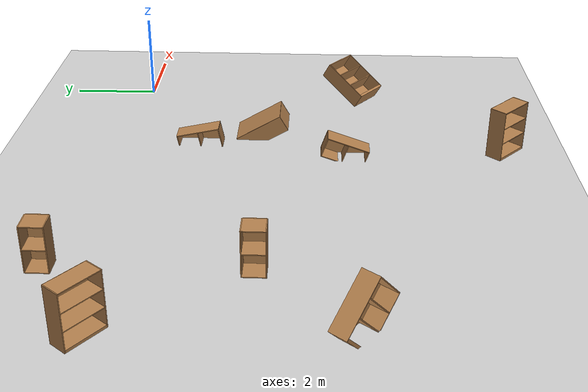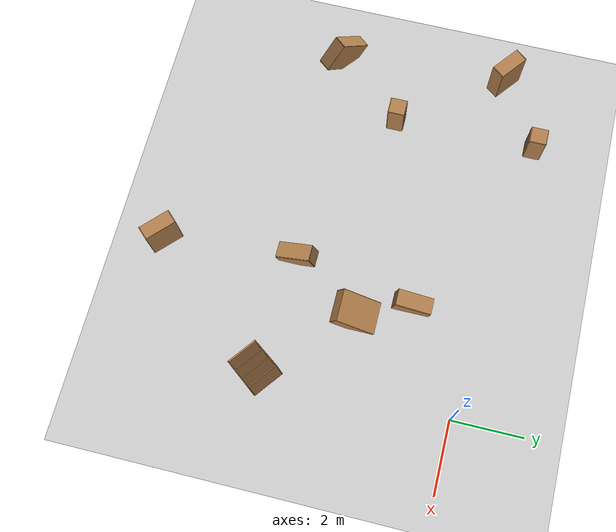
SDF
<sdf version="1.7">
 <world name="default">
  <model name="ground_plane">
   <static>1</static>
   <link name="link">
    <collision name="collision">
     <geometry><plane><normal>0 0 1</normal><size>100 100</size></plane></geometry>
     <surface><friction><ode><mu>100</mu><mu2>50</mu2></ode></friction></surface>
    </collision>
    <visual name="visual">
     <cast_shadows>0</cast_shadows>
     <geometry><plane><normal>0 0 1</normal><size>100 100</size></plane></geometry>
     <material>
      <script><uri>file://media/materials/scripts/gazebo.material</uri><name>Gazebo/Grey</name></script>
     </material>
    </visual>
   </link>
  </model>
  <model name="cabinet">
   <static>1</static>
   <link name="cabinet_bottom_plate">
    <inertial>
     <pose>0 0 -1 0 -0 0</pose>
     <inertia><ixx>2.05</ixx><ixy>0</ixy><ixz>0</ixz><iyy>2.05</iyy><iyz>0</iyz><izz>2.05</izz></inertia>
     <mass>25</mass>
    </inertial>
    <collision name="cabinet_bottom_plate_geom">
     <pose>0 0 0.01 0 -0 0</pose>
     <geometry><box><size>0.45 0.45 0.02</size></box></geometry>
    </collision>
    <visual name="cabinet_bottom_plate_geom_visual">
     <pose>0 0 0.01 0 -0 0</pose>
     <geometry><box><size>0.45 0.45 0.02</size></box></geometry>
     <material>
      <script><uri>file://media/materials/scripts/gazebo.material</uri><name>Gazebo/Wood</name></script>
     </material>
    </visual>
    <collision name="cabinet_bottom_plate_geom_cabinet_back_plate">
     <pose>0.235 0 0.51 0 -0 0</pose>
     <geometry><box><size>0.02 0.45 1.02</size></box></geometry>
    </collision>
    <visual name="cabinet_bottom_plate_geom_cabinet_back_plate_visual">
     <pose>0.235 0 0.51 0 -0 0</pose>
     <geometry><box><size>0.02 0.45 1.02</size></box></geometry>
     <material>
      <script><uri>file://media/materials/scripts/gazebo.material</uri><name>Gazebo/Wood</name></script>
     </material>
    </visual>
    <collision name="cabinet_bottom_plate_geom_cabinet_left_plate">
     <pose>0 0.235 0.51 0 -0 0</pose>
     <geometry><box><size>0.45 0.02 1.02</size></box></geometry>
    </collision>
    <visual name="cabinet_bottom_plate_geom_cabinet_left_plate_visual">
     <pose>0 0.235 0.51 0 -0 0</pose>
     <geometry><box><size>0.45 0.02 1.02</size></box></geometry>
     <material>
      <script><uri>file://media/materials/scripts/gazebo.material</uri><name>Gazebo/Wood</name></script>
     </material>
    </visual>
    <collision name="cabinet_bottom_plate_geom_cabinet_middle_plate">
     <pose>0 0 0.51 0 -0 0</pose>
     <geometry><box><size>0.45 0.45 0.02</size></box></geometry>
    </collision>
    <visual name="cabinet_bottom_plate_geom_cabinet_middle_plate_visual">
     <pose>0 0 0.51 0 -0 0</pose>
     <geometry><box><size>0.45 0.45 0.02</size></box></geometry>
     <material>
      <script><uri>file://media/materials/scripts/gazebo.material</uri><name>Gazebo/Wood</name></script>
     </material>
    </visual>
    <collision name="cabinet_bottom_plate_geom_cabinet_right_plate">
     <pose>0 -0.235 0.51 0 -0 0</pose>
     <geometry><box><size>0.45 0.02 1.02</size></box></geometry>
    </collision>
    <visual name="cabinet_bottom_plate_geom_cabinet_right_plate_visual">
     <pose>0 -0.235 0.51 0 -0 0</pose>
     <geometry><box><size>0.45 0.02 1.02</size></box></geometry>
     <material>
      <script><uri>file://media/materials/scripts/gazebo.material</uri><name>Gazebo/Wood</name></script>
     </material>
    </visual>
    <collision name="cabinet_bottom_plate_geom_cabinet_top_plate">
     <pose>0 0 1.01 0 -0 0</pose>
     <geometry><box><size>0.45 0.45 0.02</size></box></geometry>
    </collision>
    <visual name="cabinet_bottom_plate_geom_cabinet_top_plate_visual">
     <pose>0 0 1.01 0 -0 0</pose>
     <geometry><box><size>0.45 0.45 0.02</size></box></geometry>
     <material>
      <script><uri>file://media/materials/scripts/gazebo.material</uri><name>Gazebo/Wood</name></script>
     </material>
    </visual>
   </link>
   <pose>-3.45883 -5.52714 0 -1.23583 0 0</pose>
  </model>
  <model name="cabinet_0">
   <static>1</static>
   <link name="cabinet_bottom_plate">
    <inertial>
     <pose>0 0 -1 0 -0 0</pose>
     <inertia><ixx>2.05</ixx><ixy>0</ixy><ixz>0</ixz><iyy>2.05</iyy><iyz>0</iyz><izz>2.05</izz></inertia>
     <mass>25</mass>
    </inertial>
    <collision name="cabinet_bottom_plate_geom">
     <pose>0 0 0.01 0 -0 0</pose>
     <geometry><box><size>0.45 0.45 0.02</size></box></geometry>
    </collision>
    <visual name="cabinet_bottom_plate_geom_visual">
     <pose>0 0 0.01 0 -0 0</pose>
     <geometry><box><size>0.45 0.45 0.02</size></box></geometry>
     <material>
      <script><uri>file://media/materials/scripts/gazebo.material</uri><name>Gazebo/Wood</name></script>
     </material>
    </visual>
    <collision name="cabinet_bottom_plate_geom_cabinet_back_plate">
     <pose>0.235 0 0.51 0 -0 0</pose>
     <geometry><box><size>0.02 0.45 1.02</size></box></geometry>
    </collision>
    <visual name="cabinet_bottom_plate_geom_cabinet_back_plate_visual">
     <pose>0.235 0 0.51 0 -0 0</pose>
     <geometry><box><size>0.02 0.45 1.02</size></box></geometry>
     <material>
      <script><uri>file://media/materials/scripts/gazebo.material</uri><name>Gazebo/Wood</name></script>
     </material>
    </visual>
    <collision name="cabinet_bottom_plate_geom_cabinet_left_plate">
     <pose>0 0.235 0.51 0 -0 0</pose>
     <geometry><box><size>0.45 0.02 1.02</size></box></geometry>
    </collision>
    <visual name="cabinet_bottom_plate_geom_cabinet_left_plate_visual">
     <pose>0 0.235 0.51 0 -0 0</pose>
     <geometry><box><size>0.45 0.02 1.02</size></box></geometry>
     <material>
      <script><uri>file://media/materials/scripts/gazebo.material</uri><name>Gazebo/Wood</name></script>
     </material>
    </visual>
    <collision name="cabinet_bottom_plate_geom_cabinet_middle_plate">
     <pose>0 0 0.51 0 -0 0</pose>
     <geometry><box><size>0.45 0.45 0.02</size></box></geometry>
    </collision>
    <visual name="cabinet_bottom_plate_geom_cabinet_middle_plate_visual">
     <pose>0 0 0.51 0 -0 0</pose>
     <geometry><box><size>0.45 0.45 0.02</size></box></geometry>
     <material>
      <script><uri>file://media/materials/scripts/gazebo.material</uri><name>Gazebo/Wood</name></script>
     </material>
    </visual>
    <collision name="cabinet_bottom_plate_geom_cabinet_right_plate">
     <pose>0 -0.235 0.51 0 -0 0</pose>
     <geometry><box><size>0.45 0.02 1.02</size></box></geometry>
    </collision>
    <visual name="cabinet_bottom_plate_geom_cabinet_right_plate_visual">
     <pose>0 -0.235 0.51 0 -0 0</pose>
     <geometry><box><size>0.45 0.02 1.02</size></box></geometry>
     <material>
      <script><uri>file://media/materials/scripts/gazebo.material</uri><name>Gazebo/Wood</name></script>
     </material>
    </visual>
    <collision name="cabinet_bottom_plate_geom_cabinet_top_plate">
     <pose>0 0 1.01 0 -0 0</pose>
     <geometry><box><size>0.45 0.45 0.02</size></box></geometry>
    </collision>
    <visual name="cabinet_bottom_plate_geom_cabinet_top_plate_visual">
     <pose>0 0 1.01 0 -0 0</pose>
     <geometry><box><size>0.45 0.45 0.02</size></box></geometry>
     <material>
      <script><uri>file://media/materials/scripts/gazebo.material</uri><name>Gazebo/Wood</name></script>
     </material>
    </visual>
   </link>
   <pose>-2.84756 -1.12125 0 1.36291 -0 0</pose>
  </model>
  <model name="cabinet_1">
   <static>1</static>
   <link name="cabinet_bottom_plate">
    <inertial>
     <pose>0 0 -1 0 -0 0</pose>
     <inertia><ixx>2.05</ixx><ixy>0</ixy><ixz>0</ixz><iyy>2.05</iyy><iyz>0</iyz><izz>2.05</izz></inertia>
     <mass>25</mass>
    </inertial>
    <collision name="cabinet_bottom_plate_geom">
     <pose>0 0 0.01 0 -0 0</pose>
     <geometry><box><size>0.45 0.45 0.02</size></box></geometry>
    </collision>
    <visual name="cabinet_bottom_plate_geom_visual">
     <pose>0 0 0.01 0 -0 0</pose>
     <geometry><box><size>0.45 0.45 0.02</size></box></geometry>
     <material>
      <script><uri>file://media/materials/scripts/gazebo.material</uri><name>Gazebo/Wood</name></script>
     </material>
    </visual>
    <collision name="cabinet_bottom_plate_geom_cabinet_back_plate">
     <pose>0.235 0 0.51 0 -0 0</pose>
     <geometry><box><size>0.02 0.45 1.02</size></box></geometry>
    </collision>
    <visual name="cabinet_bottom_plate_geom_cabinet_back_plate_visual">
     <pose>0.235 0 0.51 0 -0 0</pose>
     <geometry><box><size>0.02 0.45 1.02</size></box></geometry>
     <material>
      <script><uri>file://media/materials/scripts/gazebo.material</uri><name>Gazebo/Wood</name></script>
     </material>
    </visual>
    <collision name="cabinet_bottom_plate_geom_cabinet_left_plate">
     <pose>0 0.235 0.51 0 -0 0</pose>
     <geometry><box><size>0.45 0.02 1.02</size></box></geometry>
    </collision>
    <visual name="cabinet_bottom_plate_geom_cabinet_left_plate_visual">
     <pose>0 0.235 0.51 0 -0 0</pose>
     <geometry><box><size>0.45 0.02 1.02</size></box></geometry>
     <material>
      <script><uri>file://media/materials/scripts/gazebo.material</uri><name>Gazebo/Wood</name></script>
     </material>
    </visual>
    <collision name="cabinet_bottom_plate_geom_cabinet_middle_plate">
     <pose>0 0 0.51 0 -0 0</pose>
     <geometry><box><size>0.45 0.45 0.02</size></box></geometry>
    </collision>
    <visual name="cabinet_bottom_plate_geom_cabinet_middle_plate_visual">
     <pose>0 0 0.51 0 -0 0</pose>
     <geometry><box><size>0.45 0.45 0.02</size></box></geometry>
     <material>
      <script><uri>file://media/materials/scripts/gazebo.material</uri><name>Gazebo/Wood</name></script>
     </material>
    </visual>
    <collision name="cabinet_bottom_plate_geom_cabinet_right_plate">
     <pose>0 -0.235 0.51 0 -0 0</pose>
     <geometry><box><size>0.45 0.02 1.02</size></box></geometry>
    </collision>
    <visual name="cabinet_bottom_plate_geom_cabinet_right_plate_visual">
     <pose>0 -0.235 0.51 0 -0 0</pose>
     <geometry><box><size>0.45 0.02 1.02</size></box></geometry>
     <material>
      <script><uri>file://media/materials/scripts/gazebo.material</uri><name>Gazebo/Wood</name></script>
     </material>
    </visual>
    <collision name="cabinet_bottom_plate_geom_cabinet_top_plate">
     <pose>0 0 1.01 0 -0 0</pose>
     <geometry><box><size>0.45 0.45 0.02</size></box></geometry>
    </collision>
    <visual name="cabinet_bottom_plate_geom_cabinet_top_plate_visual">
     <pose>0 0 1.01 0 -0 0</pose>
     <geometry><box><size>0.45 0.45 0.02</size></box></geometry>
     <material>
      <script><uri>file://media/materials/scripts/gazebo.material</uri><name>Gazebo/Wood</name></script>
     </material>
    </visual>
   </link>
   <pose>-8.17069 0.785875 0 0 -0 0</pose>
  </model>
  <model name="cabinet_3">
   <static>1</static>
   <link name="cabinet_bottom_plate">
    <inertial>
     <pose>0 0 -1 0 -0 0</pose>
     <inertia><ixx>2.05</ixx><ixy>0</ixy><ixz>0</ixz><iyy>2.05</iyy><iyz>0</iyz><izz>2.05</izz></inertia>
     <mass>25</mass>
    </inertial>
    <collision name="cabinet_bottom_plate_geom">
     <pose>0 0 0.01 0 -0 0</pose>
     <geometry><box><size>0.45 0.45 0.02</size></box></geometry>
    </collision>
    <visual name="cabinet_bottom_plate_geom_visual">
     <pose>0 0 0.01 0 -0 0</pose>
     <geometry><box><size>0.45 0.45 0.02</size></box></geometry>
     <material>
      <script><uri>file://media/materials/scripts/gazebo.material</uri><name>Gazebo/Wood</name></script>
     </material>
    </visual>
    <collision name="cabinet_bottom_plate_geom_cabinet_back_plate">
     <pose>0.235 0 0.51 0 -0 0</pose>
     <geometry><box><size>0.02 0.45 1.02</size></box></geometry>
    </collision>
    <visual name="cabinet_bottom_plate_geom_cabinet_back_plate_visual">
     <pose>0.235 0 0.51 0 -0 0</pose>
     <geometry><box><size>0.02 0.45 1.02</size></box></geometry>
     <material>
      <script><uri>file://media/materials/scripts/gazebo.material</uri><name>Gazebo/Wood</name></script>
     </material>
    </visual>
    <collision name="cabinet_bottom_plate_geom_cabinet_left_plate">
     <pose>0 0.235 0.51 0 -0 0</pose>
     <geometry><box><size>0.45 0.02 1.02</size></box></geometry>
    </collision>
    <visual name="cabinet_bottom_plate_geom_cabinet_left_plate_visual">
     <pose>0 0.235 0.51 0 -0 0</pose>
     <geometry><box><size>0.45 0.02 1.02</size></box></geometry>
     <material>
      <script><uri>file://media/materials/scripts/gazebo.material</uri><name>Gazebo/Wood</name></script>
     </material>
    </visual>
    <collision name="cabinet_bottom_plate_geom_cabinet_middle_plate">
     <pose>0 0 0.51 0 -0 0</pose>
     <geometry><box><size>0.45 0.45 0.02</size></box></geometry>
    </collision>
    <visual name="cabinet_bottom_plate_geom_cabinet_middle_plate_visual">
     <pose>0 0 0.51 0 -0 0</pose>
     <geometry><box><size>0.45 0.45 0.02</size></box></geometry>
     <material>
      <script><uri>file://media/materials/scripts/gazebo.material</uri><name>Gazebo/Wood</name></script>
     </material>
    </visual>
    <collision name="cabinet_bottom_plate_geom_cabinet_right_plate">
     <pose>0 -0.235 0.51 0 -0 0</pose>
     <geometry><box><size>0.45 0.02 1.02</size></box></geometry>
    </collision>
    <visual name="cabinet_bottom_plate_geom_cabinet_right_plate_visual">
     <pose>0 -0.235 0.51 0 -0 0</pose>
     <geometry><box><size>0.45 0.02 1.02</size></box></geometry>
     <material>
      <script><uri>file://media/materials/scripts/gazebo.material</uri><name>Gazebo/Wood</name></script>
     </material>
    </visual>
    <collision name="cabinet_bottom_plate_geom_cabinet_top_plate">
     <pose>0 0 1.01 0 -0 0</pose>
     <geometry><box><size>0.45 0.45 0.02</size></box></geometry>
    </collision>
    <visual name="cabinet_bottom_plate_geom_cabinet_top_plate_visual">
     <pose>0 0 1.01 0 -0 0</pose>
     <geometry><box><size>0.45 0.45 0.02</size></box></geometry>
     <material>
      <script><uri>file://media/materials/scripts/gazebo.material</uri><name>Gazebo/Wood</name></script>
     </material>
    </visual>
   </link>
   <pose>-8.13089 -3.26746 0 0 -0 0</pose>
  </model>
  <model name="bookshelf">
   <static>1</static>
   <link name="link">
    <inertial><mass>1</mass></inertial>
    <collision name="back">
     <pose>0 0.005 0.6 0 -0 0</pose>
     <geometry><box><size>0.9 0.01 1.2</size></box></geometry>
    </collision>
    <visual name="visual1">
     <pose>0 0.005 0.6 0 -0 0</pose>
     <geometry><box><size>0.9 0.01 1.2</size></box></geometry>
     <material>
      <script><uri>file://media/materials/scripts/gazebo.material</uri><name>Gazebo/Wood</name></script>
     </material>
    </visual>
    <collision name="left_side">
     <pose>0.45 -0.195 0.6 0 -0 0</pose>
     <geometry><box><size>0.02 0.4 1.2</size></box></geometry>
    </collision>
    <visual name="visual2">
     <pose>0.45 -0.195 0.6 0 -0 0</pose>
     <geometry><box><size>0.02 0.4 1.2</size></box></geometry>
     <material>
      <script><uri>file://media/materials/scripts/gazebo.material</uri><name>Gazebo/Wood</name></script>
     </material>
    </visual>
    <collision name="right_side">
     <pose>-0.45 -0.195 0.6 0 -0 0</pose>
     <geometry><box><size>0.02 0.4 1.2</size></box></geometry>
    </collision>
    <visual name="visual3">
     <pose>-0.45 -0.195 0.6 0 -0 0</pose>
     <geometry><box><size>0.02 0.4 1.2</size></box></geometry>
     <material>
      <script><uri>file://media/materials/scripts/gazebo.material</uri><name>Gazebo/Wood</name></script>
     </material>
    </visual>
    <collision name="bottom">
     <pose>0 -0.195 0.03 0 -0 0</pose>
     <geometry><box><size>0.88 0.4 0.06</size></box></geometry>
    </collision>
    <visual name="visual4">
     <pose>0 -0.195 0.03 0 -0 0</pose>
     <geometry><box><size>0.88 0.4 0.06</size></box></geometry>
     <material>
      <script><uri>file://media/materials/scripts/gazebo.material</uri><name>Gazebo/Wood</name></script>
     </material>
    </visual>
    <collision name="top">
     <pose>0 -0.195 1.19 0 -0 0</pose>
     <geometry><box><size>0.88 0.4 0.02</size></box></geometry>
    </collision>
    <visual name="visual5">
     <pose>0 -0.195 1.19 0 -0 0</pose>
     <geometry><box><size>0.88 0.4 0.02</size></box></geometry>
     <material>
      <script><uri>file://media/materials/scripts/gazebo.material</uri><name>Gazebo/Wood</name></script>
     </material>
    </visual>
    <collision name="low_shelf">
     <pose>0 -0.195 0.43 0 -0 0</pose>
     <geometry><box><size>0.88 0.4 0.02</size></box></geometry>
    </collision>
    <visual name="visual6">
     <pose>0 -0.195 0.43 0 -0 0</pose>
     <geometry><box><size>0.88 0.4 0.02</size></box></geometry>
     <material>
      <script><uri>file://media/materials/scripts/gazebo.material</uri><name>Gazebo/Wood</name></script>
     </material>
    </visual>
    <collision name="high_shelf">
     <pose>0 -0.195 0.8 0 -0 0</pose>
     <geometry><box><size>0.88 0.4 0.02</size></box></geometry>
    </collision>
    <visual name="visual7">
     <pose>0 -0.195 0.8 0 -0 0</pose>
     <geometry><box><size>0.88 0.4 0.02</size></box></geometry>
     <material>
      <script><uri>file://media/materials/scripts/gazebo.material</uri><name>Gazebo/Wood</name></script>
     </material>
    </visual>
   </link>
   <pose>-10.009 -0.28412 0 0 0 -0.662683</pose>
  </model>
  <model name="bookshelf_2">
   <static>1</static>
   <link name="link">
    <inertial><mass>1</mass></inertial>
    <collision name="back">
     <pose>0 0.005 0.6 0 -0 0</pose>
     <geometry><box><size>0.9 0.01 1.2</size></box></geometry>
    </collision>
    <visual name="visual1">
     <pose>0 0.005 0.6 0 -0 0</pose>
     <geometry><box><size>0.9 0.01 1.2</size></box></geometry>
     <material>
      <script><uri>file://media/materials/scripts/gazebo.material</uri><name>Gazebo/Wood</name></script>
     </material>
    </visual>
    <collision name="left_side">
     <pose>0.45 -0.195 0.6 0 -0 0</pose>
     <geometry><box><size>0.02 0.4 1.2</size></box></geometry>
    </collision>
    <visual name="visual2">
     <pose>0.45 -0.195 0.6 0 -0 0</pose>
     <geometry><box><size>0.02 0.4 1.2</size></box></geometry>
     <material>
      <script><uri>file://media/materials/scripts/gazebo.material</uri><name>Gazebo/Wood</name></script>
     </material>
    </visual>
    <collision name="right_side">
     <pose>-0.45 -0.195 0.6 0 -0 0</pose>
     <geometry><box><size>0.02 0.4 1.2</size></box></geometry>
    </collision>
    <visual name="visual3">
     <pose>-0.45 -0.195 0.6 0 -0 0</pose>
     <geometry><box><size>0.02 0.4 1.2</size></box></geometry>
     <material>
      <script><uri>file://media/materials/scripts/gazebo.material</uri><name>Gazebo/Wood</name></script>
     </material>
    </visual>
    <collision name="bottom">
     <pose>0 -0.195 0.03 0 -0 0</pose>
     <geometry><box><size>0.88 0.4 0.06</size></box></geometry>
    </collision>
    <visual name="visual4">
     <pose>0 -0.195 0.03 0 -0 0</pose>
     <geometry><box><size>0.88 0.4 0.06</size></box></geometry>
     <material>
      <script><uri>file://media/materials/scripts/gazebo.material</uri><name>Gazebo/Wood</name></script>
     </material>
    </visual>
    <collision name="top">
     <pose>0 -0.195 1.19 0 -0 0</pose>
     <geometry><box><size>0.88 0.4 0.02</size></box></geometry>
    </collision>
    <visual name="visual5">
     <pose>0 -0.195 1.19 0 -0 0</pose>
     <geometry><box><size>0.88 0.4 0.02</size></box></geometry>
     <material>
      <script><uri>file://media/materials/scripts/gazebo.material</uri><name>Gazebo/Wood</name></script>
     </material>
    </visual>
    <collision name="low_shelf">
     <pose>0 -0.195 0.43 0 -0 0</pose>
     <geometry><box><size>0.88 0.4 0.02</size></box></geometry>
    </collision>
    <visual name="visual6">
     <pose>0 -0.195 0.43 0 -0 0</pose>
     <geometry><box><size>0.88 0.4 0.02</size></box></geometry>
     <material>
      <script><uri>file://media/materials/scripts/gazebo.material</uri><name>Gazebo/Wood</name></script>
     </material>
    </visual>
    <collision name="high_shelf">
     <pose>0 -0.195 0.8 0 -0 0</pose>
     <geometry><box><size>0.88 0.4 0.02</size></box></geometry>
    </collision>
    <visual name="visual7">
     <pose>0 -0.195 0.8 0 -0 0</pose>
     <geometry><box><size>0.88 0.4 0.02</size></box></geometry>
     <material>
      <script><uri>file://media/materials/scripts/gazebo.material</uri><name>Gazebo/Wood</name></script>
     </material>
    </visual>
   </link>
   <pose>-2.93625 -8.63683 0 0 0 -0.756061</pose>
  </model>
  <model name="bookshelf_3">
   <static>1</static>
   <link name="link">
    <inertial><mass>1</mass></inertial>
    <collision name="back">
     <pose>0 0.005 0.6 0 -0 0</pose>
     <geometry><box><size>0.9 0.01 1.2</size></box></geometry>
    </collision>
    <visual name="visual1">
     <pose>0 0.005 0.6 0 -0 0</pose>
     <geometry><box><size>0.9 0.01 1.2</size></box></geometry>
     <material>
      <script><uri>file://media/materials/scripts/gazebo.material</uri><name>Gazebo/Wood</name></script>
     </material>
    </visual>
    <collision name="left_side">
     <pose>0.45 -0.195 0.6 0 -0 0</pose>
     <geometry><box><size>0.02 0.4 1.2</size></box></geometry>
    </collision>
    <visual name="visual2">
     <pose>0.45 -0.195 0.6 0 -0 0</pose>
     <geometry><box><size>0.02 0.4 1.2</size></box></geometry>
     <material>
      <script><uri>file://media/materials/scripts/gazebo.material</uri><name>Gazebo/Wood</name></script>
     </material>
    </visual>
    <collision name="right_side">
     <pose>-0.45 -0.195 0.6 0 -0 0</pose>
     <geometry><box><size>0.02 0.4 1.2</size></box></geometry>
    </collision>
    <visual name="visual3">
     <pose>-0.45 -0.195 0.6 0 -0 0</pose>
     <geometry><box><size>0.02 0.4 1.2</size></box></geometry>
     <material>
      <script><uri>file://media/materials/scripts/gazebo.material</uri><name>Gazebo/Wood</name></script>
     </material>
    </visual>
    <collision name="bottom">
     <pose>0 -0.195 0.03 0 -0 0</pose>
     <geometry><box><size>0.88 0.4 0.06</size></box></geometry>
    </collision>
    <visual name="visual4">
     <pose>0 -0.195 0.03 0 -0 0</pose>
     <geometry><box><size>0.88 0.4 0.06</size></box></geometry>
     <material>
      <script><uri>file://media/materials/scripts/gazebo.material</uri><name>Gazebo/Wood</name></script>
     </material>
    </visual>
    <collision name="top">
     <pose>0 -0.195 1.19 0 -0 0</pose>
     <geometry><box><size>0.88 0.4 0.02</size></box></geometry>
    </collision>
    <visual name="visual5">
     <pose>0 -0.195 1.19 0 -0 0</pose>
     <geometry><box><size>0.88 0.4 0.02</size></box></geometry>
     <material>
      <script><uri>file://media/materials/scripts/gazebo.material</uri><name>Gazebo/Wood</name></script>
     </material>
    </visual>
    <collision name="low_shelf">
     <pose>0 -0.195 0.43 0 -0 0</pose>
     <geometry><box><size>0.88 0.4 0.02</size></box></geometry>
    </collision>
    <visual name="visual6">
     <pose>0 -0.195 0.43 0 -0 0</pose>
     <geometry><box><size>0.88 0.4 0.02</size></box></geometry>
     <material>
      <script><uri>file://media/materials/scripts/gazebo.material</uri><name>Gazebo/Wood</name></script>
     </material>
    </visual>
    <collision name="high_shelf">
     <pose>0 -0.195 0.8 0 -0 0</pose>
     <geometry><box><size>0.88 0.4 0.02</size></box></geometry>
    </collision>
    <visual name="visual7">
     <pose>0 -0.195 0.8 0 -0 0</pose>
     <geometry><box><size>0.88 0.4 0.02</size></box></geometry>
     <material>
      <script><uri>file://media/materials/scripts/gazebo.material</uri><name>Gazebo/Wood</name></script>
     </material>
    </visual>
   </link>
   <pose>-0.326081 -5.62916 0 -1.03827 -0 -0.649687</pose>
  </model>
  <model name="bookshelf_4">
   <static>1</static>
   <link name="link">
    <inertial><mass>1</mass></inertial>
    <collision name="back">
     <pose>0 0.005 0.6 0 -0 0</pose>
     <geometry><box><size>0.9 0.01 1.2</size></box></geometry>
    </collision>
    <visual name="visual1">
     <pose>0 0.005 0.6 0 -0 0</pose>
     <geometry><box><size>0.9 0.01 1.2</size></box></geometry>
     <material>
      <script><uri>file://media/materials/scripts/gazebo.material</uri><name>Gazebo/Wood</name></script>
     </material>
    </visual>
    <collision name="left_side">
     <pose>0.45 -0.195 0.6 0 -0 0</pose>
     <geometry><box><size>0.02 0.4 1.2</size></box></geometry>
    </collision>
    <visual name="visual2">
     <pose>0.45 -0.195 0.6 0 -0 0</pose>
     <geometry><box><size>0.02 0.4 1.2</size></box></geometry>
     <material>
      <script><uri>file://media/materials/scripts/gazebo.material</uri><name>Gazebo/Wood</name></script>
     </material>
    </visual>
    <collision name="right_side">
     <pose>-0.45 -0.195 0.6 0 -0 0</pose>
     <geometry><box><size>0.02 0.4 1.2</size></box></geometry>
    </collision>
    <visual name="visual3">
     <pose>-0.45 -0.195 0.6 0 -0 0</pose>
     <geometry><box><size>0.02 0.4 1.2</size></box></geometry>
     <material>
      <script><uri>file://media/materials/scripts/gazebo.material</uri><name>Gazebo/Wood</name></script>
     </material>
    </visual>
    <collision name="bottom">
     <pose>0 -0.195 0.03 0 -0 0</pose>
     <geometry><box><size>0.88 0.4 0.06</size></box></geometry>
    </collision>
    <visual name="visual4">
     <pose>0 -0.195 0.03 0 -0 0</pose>
     <geometry><box><size>0.88 0.4 0.06</size></box></geometry>
     <material>
      <script><uri>file://media/materials/scripts/gazebo.material</uri><name>Gazebo/Wood</name></script>
     </material>
    </visual>
    <collision name="top">
     <pose>0 -0.195 1.19 0 -0 0</pose>
     <geometry><box><size>0.88 0.4 0.02</size></box></geometry>
    </collision>
    <visual name="visual5">
     <pose>0 -0.195 1.19 0 -0 0</pose>
     <geometry><box><size>0.88 0.4 0.02</size></box></geometry>
     <material>
      <script><uri>file://media/materials/scripts/gazebo.material</uri><name>Gazebo/Wood</name></script>
     </material>
    </visual>
    <collision name="low_shelf">
     <pose>0 -0.195 0.43 0 -0 0</pose>
     <geometry><box><size>0.88 0.4 0.02</size></box></geometry>
    </collision>
    <visual name="visual6">
     <pose>0 -0.195 0.43 0 -0 0</pose>
     <geometry><box><size>0.88 0.4 0.02</size></box></geometry>
     <material>
      <script><uri>file://media/materials/scripts/gazebo.material</uri><name>Gazebo/Wood</name></script>
     </material>
    </visual>
    <collision name="high_shelf">
     <pose>0 -0.195 0.8 0 -0 0</pose>
     <geometry><box><size>0.88 0.4 0.02</size></box></geometry>
    </collision>
    <visual name="visual7">
     <pose>0 -0.195 0.8 0 -0 0</pose>
     <geometry><box><size>0.88 0.4 0.02</size></box></geometry>
     <material>
      <script><uri>file://media/materials/scripts/gazebo.material</uri><name>Gazebo/Wood</name></script>
     </material>
    </visual>
   </link>
   <pose>-10.0196 -4.81926 0 0 0.823843 -0.673708</pose>
  </model>
  <model name="bookshelf_5">
   <static>1</static>
   <link name="link">
    <inertial><mass>1</mass></inertial>
    <collision name="back">
     <pose>0 0.005 0.6 0 -0 0</pose>
     <geometry><box><size>0.9 0.01 1.2</size></box></geometry>
    </collision>
    <visual name="visual1">
     <pose>0 0.005 0.6 0 -0 0</pose>
     <geometry><box><size>0.9 0.01 1.2</size></box></geometry>
     <material>
      <script><uri>file://media/materials/scripts/gazebo.material</uri><name>Gazebo/Wood</name></script>
     </material>
    </visual>
    <collision name="left_side">
     <pose>0.45 -0.195 0.6 0 -0 0</pose>
     <geometry><box><size>0.02 0.4 1.2</size></box></geometry>
    </collision>
    <visual name="visual2">
     <pose>0.45 -0.195 0.6 0 -0 0</pose>
     <geometry><box><size>0.02 0.4 1.2</size></box></geometry>
     <material>
      <script><uri>file://media/materials/scripts/gazebo.material</uri><name>Gazebo/Wood</name></script>
     </material>
    </visual>
    <collision name="right_side">
     <pose>-0.45 -0.195 0.6 0 -0 0</pose>
     <geometry><box><size>0.02 0.4 1.2</size></box></geometry>
    </collision>
    <visual name="visual3">
     <pose>-0.45 -0.195 0.6 0 -0 0</pose>
     <geometry><box><size>0.02 0.4 1.2</size></box></geometry>
     <material>
      <script><uri>file://media/materials/scripts/gazebo.material</uri><name>Gazebo/Wood</name></script>
     </material>
    </visual>
    <collision name="bottom">
     <pose>0 -0.195 0.03 0 -0 0</pose>
     <geometry><box><size>0.88 0.4 0.06</size></box></geometry>
    </collision>
    <visual name="visual4">
     <pose>0 -0.195 0.03 0 -0 0</pose>
     <geometry><box><size>0.88 0.4 0.06</size></box></geometry>
     <material>
      <script><uri>file://media/materials/scripts/gazebo.material</uri><name>Gazebo/Wood</name></script>
     </material>
    </visual>
    <collision name="top">
     <pose>0 -0.195 1.19 0 -0 0</pose>
     <geometry><box><size>0.88 0.4 0.02</size></box></geometry>
    </collision>
    <visual name="visual5">
     <pose>0 -0.195 1.19 0 -0 0</pose>
     <geometry><box><size>0.88 0.4 0.02</size></box></geometry>
     <material>
      <script><uri>file://media/materials/scripts/gazebo.material</uri><name>Gazebo/Wood</name></script>
     </material>
    </visual>
    <collision name="low_shelf">
     <pose>0 -0.195 0.43 0 -0 0</pose>
     <geometry><box><size>0.88 0.4 0.02</size></box></geometry>
    </collision>
    <visual name="visual6">
     <pose>0 -0.195 0.43 0 -0 0</pose>
     <geometry><box><size>0.88 0.4 0.02</size></box></geometry>
     <material>
      <script><uri>file://media/materials/scripts/gazebo.material</uri><name>Gazebo/Wood</name></script>
     </material>
    </visual>
    <collision name="high_shelf">
     <pose>0 -0.195 0.8 0 -0 0</pose>
     <geometry><box><size>0.88 0.4 0.02</size></box></geometry>
    </collision>
    <visual name="visual7">
     <pose>0 -0.195 0.8 0 -0 0</pose>
     <geometry><box><size>0.88 0.4 0.02</size></box></geometry>
     <material>
      <script><uri>file://media/materials/scripts/gazebo.material</uri><name>Gazebo/Wood</name></script>
     </material>
    </visual>
   </link>
   <pose>-2.22415 -2.46609 0 1.04399 -0 0</pose>
  </model>
 </world>
</sdf>
